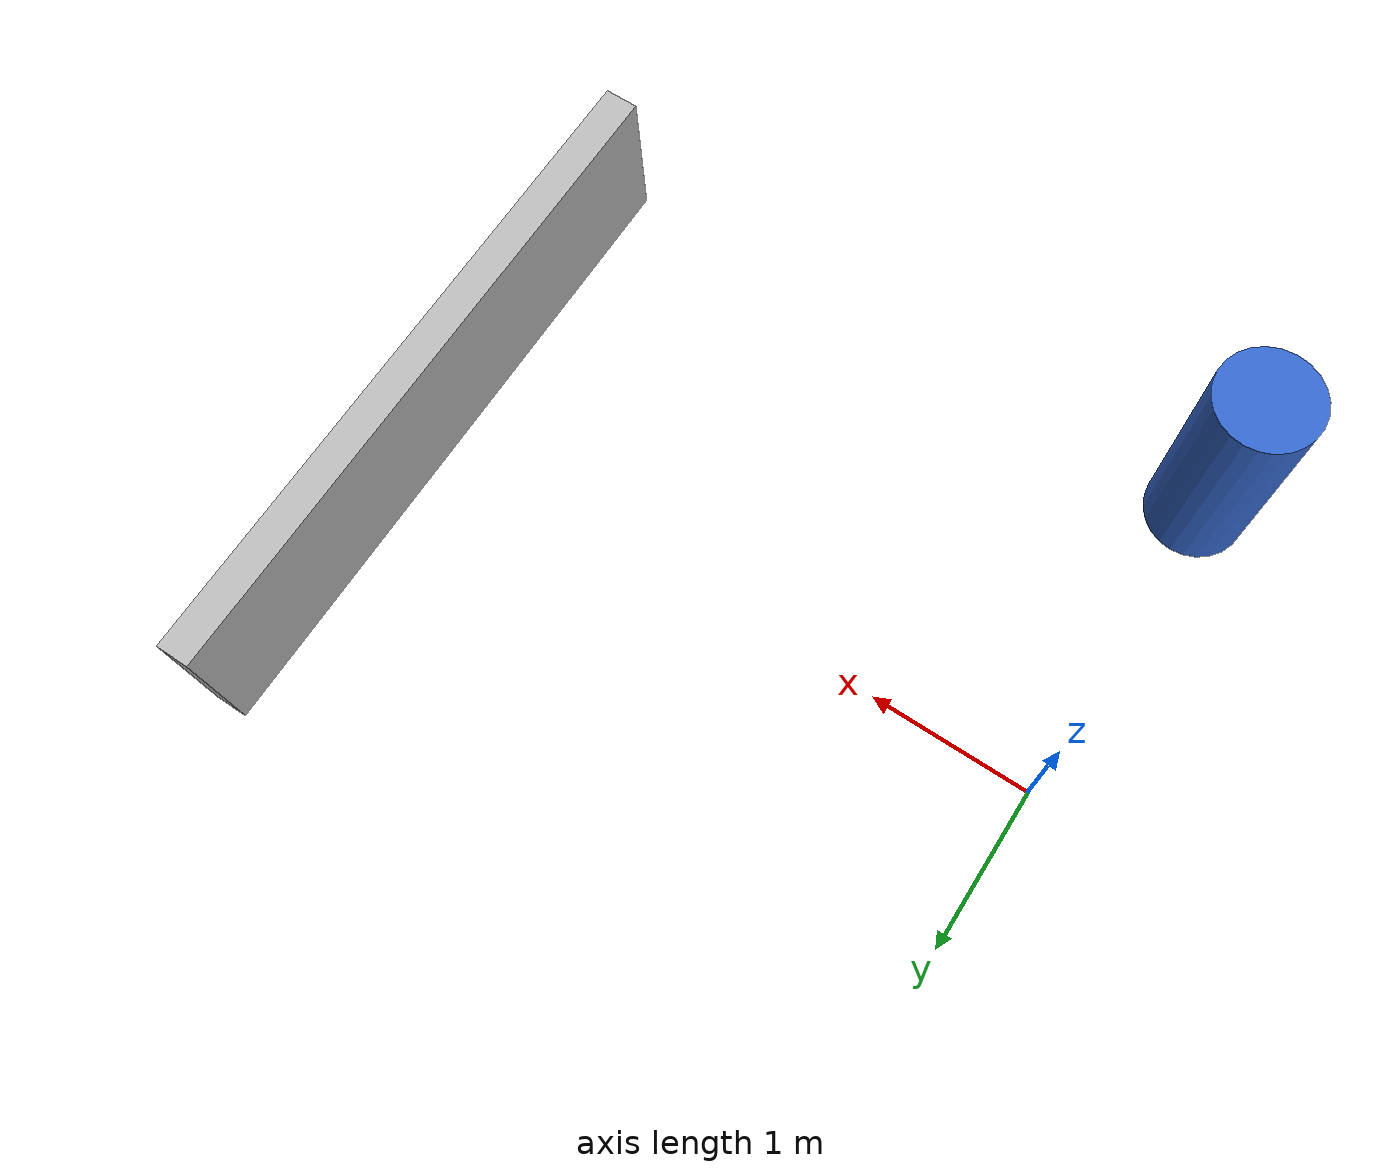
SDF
<?xml version="1.0" ?>
<sdf version="1.7">
  <world name="test_mesh">
    <!-- 相対URIのSTLメッシュ壁: 頂点は x[-0.1,0.1] y[-2,2] z[0,1]、モデルは x=4 -->
    <model name="mesh_wall">
      <static>true</static>
      <pose>4 0 0 0 0 0</pose>
      <link name="link">
        <visual name="visual">
          <geometry>
            <mesh><uri>meshes/wall.stl</uri></mesh>
          </geometry>
        </visual>
      </link>
    </model>
    <!-- model:// include (world隣の models/ から解決) -->
    <include>
      <uri>model://pillar_model</uri>
      <name>pillar1</name>
      <pose>0 -2 0 0 0 0</pose>
    </include>
  </world>
</sdf>

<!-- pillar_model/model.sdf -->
<sdf version="1.7">
  <model name="pillar_model">
    <static>true</static>
    <link name="link">
      <pose>0 0 0.75 0 0 0</pose>
      <collision name="collision">
        <geometry>
          <cylinder><radius>0.3</radius><length>1.5</length></cylinder>
        </geometry>
      </collision>
      <visual name="visual">
        <geometry>
          <cylinder><radius>0.3</radius><length>1.5</length></cylinder>
        </geometry>
        <material>
          <diffuse>0.2 0.4 0.8 1</diffuse>
        </material>
      </visual>
    </link>
  </model>
</sdf>
